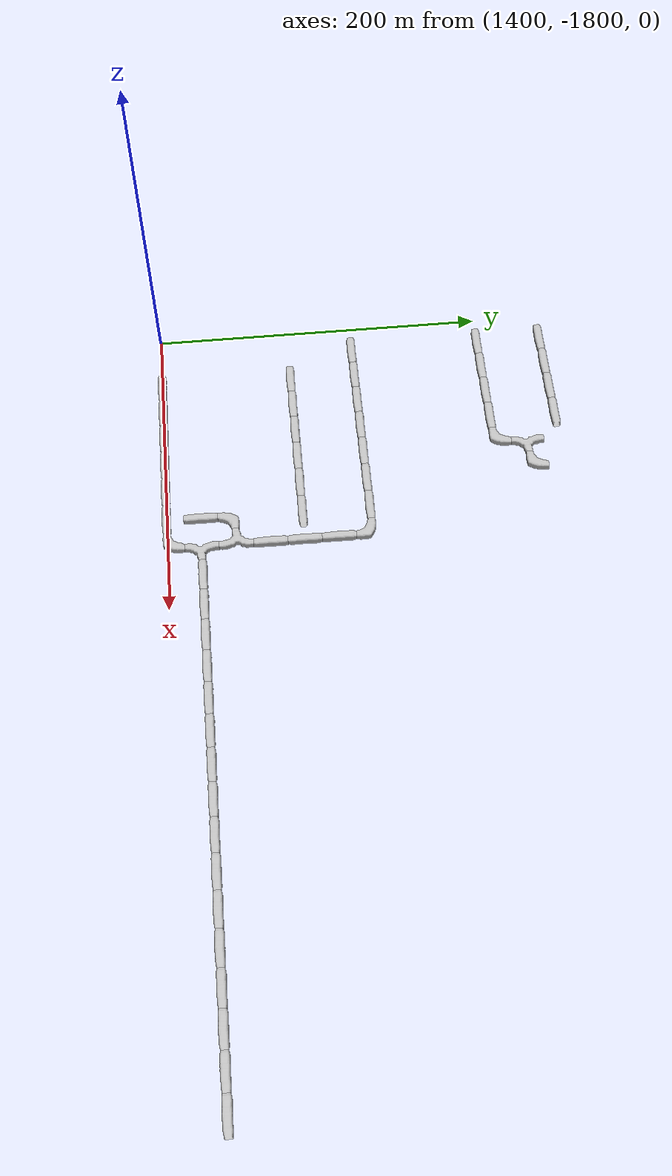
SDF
<sdf version="1.6">
 <world name="cave_32000_32">
  <include>
   <static>true</static>
   <name>cave_71_-80</name>
   <pose>1420 -1600 0 0 0 1.5707963267948966</pose>
   <uri>model://cave_straight_20m</uri>
  </include>
  <include>
   <static>true</static>
   <name>cave_72_-80</name>
   <pose>1440 -1600 0 0 0 1.5707963267948966</pose>
   <uri>model://cave_straight_20m</uri>
  </include>
  <include>
   <static>true</static>
   <name>cave_73_-80</name>
   <pose>1460 -1600 0 0 0 1.5707963267948966</pose>
   <uri>model://cave_straight_20m</uri>
  </include>
  <include>
   <static>true</static>
   <name>cave_74_-80</name>
   <pose>1480 -1600 0 0 0 1.5707963267948966</pose>
   <uri>model://cave_straight_20m</uri>
  </include>
  <include>
   <static>true</static>
   <name>cave_75_-80</name>
   <pose>1500 -1600 0 0 0 1.5707963267948966</pose>
   <uri>model://cave_L_20m</uri>
  </include>
  <include>
   <static>true</static>
   <name>cave_75_-79</name>
   <pose>1500 -1580 0 0 0 -1.5707963267948966</pose>
   <uri>model://cave_3way_20m</uri>
  </include>
  <include>
   <static>true</static>
   <name>cave_76_-79</name>
   <pose>1520 -1580 0 0 0 1.5707963267948966</pose>
   <uri>model://cave_L_20m</uri>
  </include>
  <include>
   <static>true</static>
   <name>cave_74_-78</name>
   <pose>1480 -1560 0 0 0 1.5707963267948966</pose>
   <uri>model://cave_straight_20m</uri>
  </include>
  <include>
   <static>true</static>
   <name>cave_73_-78</name>
   <pose>1460 -1560 0 0 0 1.5707963267948966</pose>
   <uri>model://cave_straight_20m</uri>
  </include>
  <include>
   <static>true</static>
   <name>cave_72_-78</name>
   <pose>1440 -1560 0 0 0 1.5707963267948966</pose>
   <uri>model://cave_straight_20m</uri>
  </include>
  <include>
   <static>true</static>
   <name>cave_71_-78</name>
   <pose>1420 -1560 0 0 0 1.5707963267948966</pose>
   <uri>model://cave_straight_20m</uri>
  </include>
  <include>
   <static>true</static>
   <name>cave_71_-84</name>
   <pose>1420 -1680 0 0 0 1.5707963267948966</pose>
   <uri>model://cave_straight_20m</uri>
  </include>
  <include>
   <static>true</static>
   <name>cave_72_-84</name>
   <pose>1440 -1680 0 0 0 1.5707963267948966</pose>
   <uri>model://cave_straight_20m</uri>
  </include>
  <include>
   <static>true</static>
   <name>cave_73_-84</name>
   <pose>1460 -1680 0 0 0 1.5707963267948966</pose>
   <uri>model://cave_straight_20m</uri>
  </include>
  <include>
   <static>true</static>
   <name>cave_74_-84</name>
   <pose>1480 -1680 0 0 0 1.5707963267948966</pose>
   <uri>model://cave_straight_20m</uri>
  </include>
  <include>
   <static>true</static>
   <name>cave_75_-84</name>
   <pose>1500 -1680 0 0 0 1.5707963267948966</pose>
   <uri>model://cave_straight_20m</uri>
  </include>
  <include>
   <static>true</static>
   <name>cave_76_-84</name>
   <pose>1520 -1680 0 0 0 1.5707963267948966</pose>
   <uri>model://cave_straight_20m</uri>
  </include>
  <include>
   <static>true</static>
   <name>cave_77_-84</name>
   <pose>1540 -1680 0 0 0 1.5707963267948966</pose>
   <uri>model://cave_straight_20m</uri>
  </include>
  <include>
   <static>true</static>
   <name>cave_78_-84</name>
   <pose>1560 -1680 0 0 0 3.141592653589793</pose>
   <uri>model://cave_L_20m</uri>
  </include>
  <include>
   <static>true</static>
   <name>cave_78_-85</name>
   <pose>1560 -1700 0 0 0 0.0</pose>
   <uri>model://cave_straight_20m</uri>
  </include>
  <include>
   <static>true</static>
   <name>cave_78_-86</name>
   <pose>1560 -1720 0 0 0 0.0</pose>
   <uri>model://cave_straight_20m</uri>
  </include>
  <include>
   <static>true</static>
   <name>cave_78_-87</name>
   <pose>1560 -1740 0 0 0 0.0</pose>
   <uri>model://cave_straight_20m</uri>
  </include>
  <include>
   <static>true</static>
   <name>cave_78_-88</name>
   <pose>1560 -1760 0 0 0 1.5707963267948966</pose>
   <uri>model://cave_3way_20m</uri>
  </include>
  <include>
   <static>true</static>
   <name>cave_78_-89</name>
   <pose>1560 -1780 0 0 0 -1.5707963267948966</pose>
   <uri>model://cave_3way_20m</uri>
  </include>
  <include>
   <static>true</static>
   <name>cave_79_-89</name>
   <pose>1580 -1780 0 0 0 1.5707963267948966</pose>
   <uri>model://cave_straight_20m</uri>
  </include>
  <include>
   <static>true</static>
   <name>cave_80_-89</name>
   <pose>1600 -1780 0 0 0 1.5707963267948966</pose>
   <uri>model://cave_straight_20m</uri>
  </include>
  <include>
   <static>true</static>
   <name>cave_81_-89</name>
   <pose>1620 -1780 0 0 0 1.5707963267948966</pose>
   <uri>model://cave_straight_20m</uri>
  </include>
  <include>
   <static>true</static>
   <name>cave_82_-89</name>
   <pose>1640 -1780 0 0 0 1.5707963267948966</pose>
   <uri>model://cave_straight_20m</uri>
  </include>
  <include>
   <static>true</static>
   <name>cave_83_-89</name>
   <pose>1660 -1780 0 0 0 1.5707963267948966</pose>
   <uri>model://cave_straight_20m</uri>
  </include>
  <include>
   <static>true</static>
   <name>cave_84_-89</name>
   <pose>1680 -1780 0 0 0 1.5707963267948966</pose>
   <uri>model://cave_straight_20m</uri>
  </include>
  <include>
   <static>true</static>
   <name>cave_85_-89</name>
   <pose>1700 -1780 0 0 0 1.5707963267948966</pose>
   <uri>model://cave_straight_20m</uri>
  </include>
  <include>
   <static>true</static>
   <name>cave_86_-89</name>
   <pose>1720 -1780 0 0 0 1.5707963267948966</pose>
   <uri>model://cave_straight_20m</uri>
  </include>
  <include>
   <static>true</static>
   <name>cave_87_-89</name>
   <pose>1740 -1780 0 0 0 1.5707963267948966</pose>
   <uri>model://cave_straight_20m</uri>
  </include>
  <include>
   <static>true</static>
   <name>cave_88_-89</name>
   <pose>1760 -1780 0 0 0 1.5707963267948966</pose>
   <uri>model://cave_straight_20m</uri>
  </include>
  <include>
   <static>true</static>
   <name>cave_89_-89</name>
   <pose>1780 -1780 0 0 0 1.5707963267948966</pose>
   <uri>model://cave_straight_20m</uri>
  </include>
  <include>
   <static>true</static>
   <name>cave_90_-89</name>
   <pose>1800 -1780 0 0 0 1.5707963267948966</pose>
   <uri>model://cave_straight_20m</uri>
  </include>
  <include>
   <static>true</static>
   <name>cave_91_-89</name>
   <pose>1820 -1780 0 0 0 1.5707963267948966</pose>
   <uri>model://cave_straight_20m</uri>
  </include>
  <include>
   <static>true</static>
   <name>cave_92_-89</name>
   <pose>1840 -1780 0 0 0 1.5707963267948966</pose>
   <uri>model://cave_straight_20m</uri>
  </include>
  <include>
   <static>true</static>
   <name>cave_93_-89</name>
   <pose>1860 -1780 0 0 0 1.5707963267948966</pose>
   <uri>model://cave_straight_20m</uri>
  </include>
  <include>
   <static>true</static>
   <name>cave_94_-89</name>
   <pose>1880 -1780 0 0 0 1.5707963267948966</pose>
   <uri>model://cave_straight_20m</uri>
  </include>
  <include>
   <static>true</static>
   <name>cave_78_-90</name>
   <pose>1560 -1800 0 0 0 1.5707963267948966</pose>
   <uri>model://cave_L_20m</uri>
  </include>
  <include>
   <static>true</static>
   <name>cave_77_-90</name>
   <pose>1540 -1800 0 0 0 1.5707963267948966</pose>
   <uri>model://cave_straight_20m</uri>
  </include>
  <include>
   <static>true</static>
   <name>cave_76_-90</name>
   <pose>1520 -1800 0 0 0 1.5707963267948966</pose>
   <uri>model://cave_straight_20m</uri>
  </include>
  <include>
   <static>true</static>
   <name>cave_75_-90</name>
   <pose>1500 -1800 0 0 0 1.5707963267948966</pose>
   <uri>model://cave_straight_20m</uri>
  </include>
  <include>
   <static>true</static>
   <name>cave_74_-90</name>
   <pose>1480 -1800 0 0 0 1.5707963267948966</pose>
   <uri>model://cave_straight_20m</uri>
  </include>
  <include>
   <static>true</static>
   <name>cave_73_-90</name>
   <pose>1460 -1800 0 0 0 1.5707963267948966</pose>
   <uri>model://cave_straight_20m</uri>
  </include>
  <include>
   <static>true</static>
   <name>cave_72_-90</name>
   <pose>1440 -1800 0 0 0 1.5707963267948966</pose>
   <uri>model://cave_straight_20m</uri>
  </include>
  <include>
   <static>true</static>
   <name>cave_77_-88</name>
   <pose>1540 -1760 0 0 0 -1.5707963267948966</pose>
   <uri>model://cave_L_20m</uri>
  </include>
  <include>
   <static>true</static>
   <name>cave_77_-89</name>
   <pose>1540 -1780 0 0 0 0.0</pose>
   <uri>model://cave_straight_20m</uri>
  </include>
  <include>
   <static>true</static>
   <name>cave_72_-86</name>
   <pose>1440 -1720 0 0 0 1.5707963267948966</pose>
   <uri>model://cave_straight_20m</uri>
  </include>
  <include>
   <static>true</static>
   <name>cave_73_-86</name>
   <pose>1460 -1720 0 0 0 1.5707963267948966</pose>
   <uri>model://cave_straight_20m</uri>
  </include>
  <include>
   <static>true</static>
   <name>cave_74_-86</name>
   <pose>1480 -1720 0 0 0 1.5707963267948966</pose>
   <uri>model://cave_straight_20m</uri>
  </include>
  <include>
   <static>true</static>
   <name>cave_75_-86</name>
   <pose>1500 -1720 0 0 0 1.5707963267948966</pose>
   <uri>model://cave_straight_20m</uri>
  </include>
  <include>
   <static>true</static>
   <name>cave_76_-86</name>
   <pose>1520 -1720 0 0 0 1.5707963267948966</pose>
   <uri>model://cave_straight_20m</uri>
  </include>
  <include>
   <static>true</static>
   <name>cave_77_-86</name>
   <pose>1540 -1720 0 0 0 1.5707963267948966</pose>
   <uri>model://cave_straight_20m</uri>
  </include>
 </world>
</sdf>
